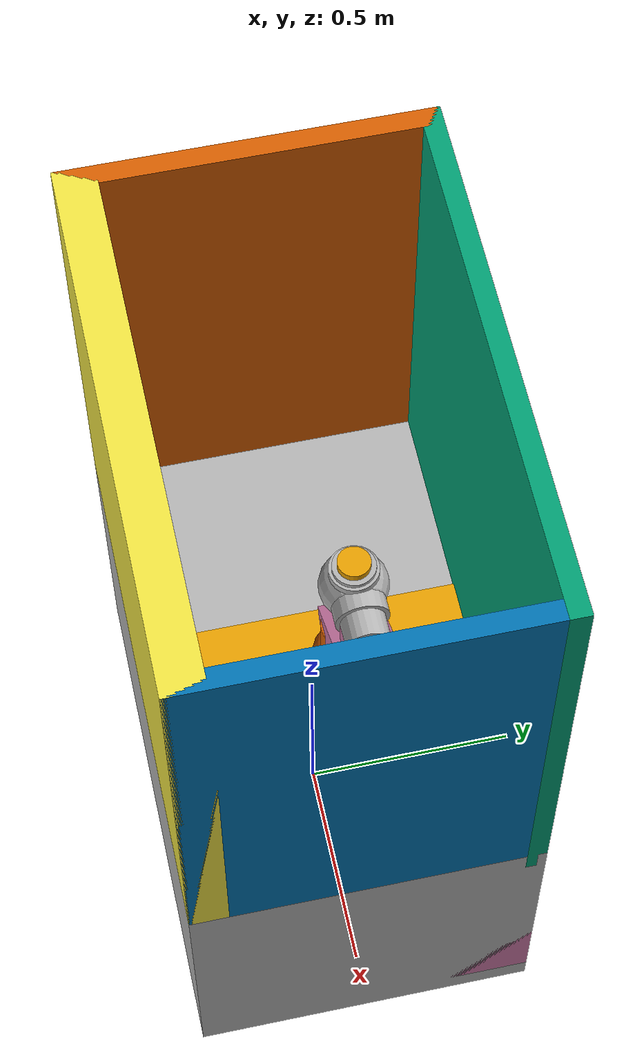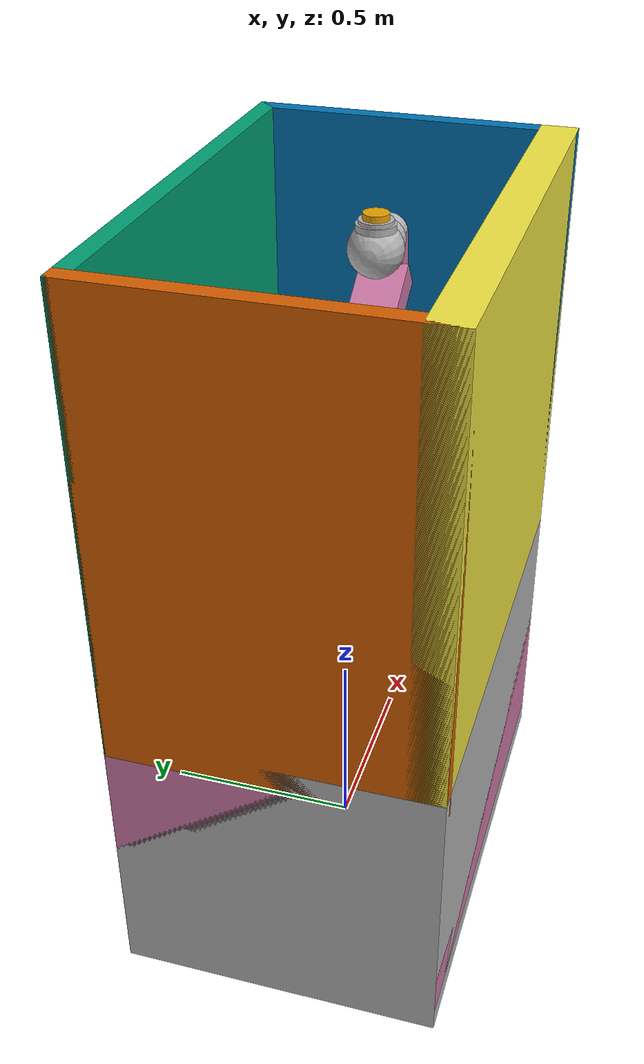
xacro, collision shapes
<?xml version="1.0"?>
<robot xmlns:xacro="http://www.ros.org/wiki/xacro" name="prbt_cell">
    <xacro:arg name="robot_prefix" default="prbt_"/>
    <xacro:arg name="bus_config" default="$(find prbt_robot_support)/config/prbt/bus.yml"/>
    <xacro:arg name="master_config" default="$(find prbt_robot_support)/config/prbt/master.dcf"/>
    <xacro:arg name="can_interface_name" default="vcan0"/>
    <xacro:arg name="master_bin" default=""/>
    <xacro:arg name="use_nominal_extrinsics" default="false"/>
    <xacro:arg name="add_plug" default="false" />
    <xacro:arg name="use_mesh" default="true" />
    <xacro:arg name="sim" default="false" />
    <xacro:arg name="simulation_controllers" default="" />

    <xacro:include filename="$(find prbt_cell_description)/urdf/robot_cell.xacro"/>
    <xacro:include filename="$(find prbt_cell_description)/urdf/gz_sim.ros2_control.xacro"/>
    <xacro:include filename="$(find prbt_robot_support)/urdf/prbt_macro.xacro" />
    <xacro:include filename="$(find prbt_robot_support)/urdf/prbt.ros2_control.xacro" />

    <!-- Add world link -->
    <link name="world" />

    <xacro:robot_cell name="robot_cell" prefix="" parent="world">
        <origin xyz="0 0 0" rpy="0 0 0" />
    </xacro:robot_cell>

    <!-- Add robot -->
    <xacro:prbt prefix="$(arg robot_prefix)" parent="robot_link">
        <origin xyz="0 0 0" rpy="0 0 -${pi/2}" />
    </xacro:prbt>

    <!-- Add ros2_control -->
    <!-- Add ros2_control -->
    <xacro:if value="$(arg sim)">
        <xacro:sim_ros2_control
            name="$(arg robot_prefix)"
            tf_prefix="$(arg robot_prefix)"
            initial_positions="${dict(prbt_joint_1=0.0, prbt_joint_2=1.57, prbt_joint_3=0.0, prbt_joint_4=1.57, prbt_joint_5=0.0, prbt_joint_6=0.0)}" />
        <gazebo reference="world">
        </gazebo>
        <gazebo>
            <plugin filename="gz_ros2_control-system" name="gz_ros2_control::GazeboSimROS2ControlPlugin">
                <parameters>$(arg simulation_controllers)</parameters>
            </plugin>
        </gazebo>
    </xacro:if>
    <xacro:unless value="$(arg sim)">
        <!-- Use real hardware ros2_control when sim is false -->
        <xacro:prbt_ros2_control
            name="$(arg robot_prefix)"
            prefix="$(arg robot_prefix)"
            bus_config="$(arg bus_config)"
            master_config="$(arg master_config)"
            can_interface_name="$(arg can_interface_name)"
            master_bin="$(arg master_bin)" />
    </xacro:unless>

</robot>

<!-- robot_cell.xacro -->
<robot xmlns:xacro="http://www.ros.org/wiki/xacro" name="robot_cell">
    <xacro:include filename="inertial_macros.xacro"/>
    <xacro:macro name="robot_cell" params="
        name
        prefix
        parent
        *origin">
        <xacro:property name="robot_center_offset_length" value="0.315" />
        <xacro:property name="robot_center_offset_width" value="0.02" />
        <xacro:property name="robot_base_height" value="0.62" />
        <xacro:property name="robotcell_length" value="1.20" />
        <xacro:property name="robotcell_width" value="0.80" />
        <xacro:property name="robotcell_height" value="1.16" />
        <xacro:property name="shield_thickness" value="0.045" />

        <material name="gray">
            <color rgba="0.6 0.8 0.8 1" />
        </material>

        <link name="${prefix}visuals_link">
            <visual>
                <geometry>
                    <mesh filename="file://$(find prbt_cell_description)/meshes/prbt_cell_v1.0.STL" scale="0.001 0.001 0.001" />
                </geometry>
                <material name="gray"/>
            </visual>
        </link>
        <link name="${prefix}shield_front_link">
            <collision>
                <origin rpy="0 0 0" xyz="0 0 0" />
                <geometry>
                    <box size="${robotcell_length} ${shield_thickness} ${robotcell_height}" />
                </geometry>
                <material name="gray"/>
            </collision>
            <xacro:inertial_box mass="5" x="${robotcell_length}" y="${shield_thickness}" z="${robotcell_height}">
                <origin rpy="0 0 0" xyz="0 0 0" />
            </xacro:inertial_box>
        </link>

        <link name="${prefix}shield_rear_link">
            <collision>
                <origin rpy="0 0 0 " xyz="0 0 0" />
                <geometry>
                    <box size="${robotcell_length} ${shield_thickness*2} ${robotcell_height}" />
                </geometry>
                <material name="gray"/>
            </collision>
            <xacro:inertial_box mass="5" x="${robotcell_length}" y="${shield_thickness*2}" z="${robotcell_height}">
                <origin rpy="0 0 0" xyz="0 0 0" />
            </xacro:inertial_box>
        </link>

        <link name="${prefix}shield_right_link">
            <collision>
                <origin rpy="0 0 0" xyz="0 0 0" />
                <geometry>
                    <box size="${shield_thickness} ${robotcell_width} ${robotcell_height}" />
                </geometry>
                <material name="gray"/>
            </collision>
            <xacro:inertial_box mass="5" x="${shield_thickness}" y="${robotcell_width}" z="${robotcell_height}">
                <origin rpy="0 0 0" xyz="0 0 0" />
            </xacro:inertial_box>
        </link>

        <link name="${prefix}shield_left_link">
            <collision>
                <origin rpy="0 0 0" xyz="0 0 0" />
                <geometry>
                    <box size="${shield_thickness} ${robotcell_width} ${robotcell_height}" />
                </geometry>
                <material name="gray"/>
            </collision>
            <xacro:inertial_box mass="5" x="${shield_thickness}" y="${robotcell_width}" z="${robotcell_height}">
                <origin rpy="0 0 0" xyz="0 0 0" />
            </xacro:inertial_box>
        </link>

        <link name="${prefix}robotcell_base_link">
            <collision>
                <origin rpy="0 0 0" xyz="0 0 ${robot_base_height/2}" />
                <geometry>
                    <box size="${robotcell_length} ${robotcell_width} ${robot_base_height}" />
                </geometry>
                <material name="gray"/>
            </collision>
            <xacro:inertial_box mass="70" x="${robotcell_length}" y="${robotcell_width}" z="${robot_base_height}">
                <origin rpy="0 0 0" xyz="0 0 0" />
            </xacro:inertial_box>
        </link>
        <link name="${prefix}robotcell_collision_base_link">
            <collision>
                <origin rpy="0 0 0" xyz="0 0 ${robot_base_height/2}" />
                <geometry>
                    <box size="${robotcell_length} ${robotcell_width} ${robot_base_height+0.12}" />
                </geometry>
                <material name="gray"/>
            </collision>
            <xacro:inertial_box mass="70" x="${robotcell_length}" y="${robotcell_width}" z="${robot_base_height+0.12}">
                <origin rpy="0 0 0" xyz="0 0 0" />
            </xacro:inertial_box>
        </link>

        <link name="${prefix}robotcell_collision_object_link">
            <collision>
                <origin rpy="0 0 0" xyz="0 0 0" />
                <geometry>
                    <box size="0.1 0.6 0.15" />
                </geometry>
                <material name="gray"/>
            </collision>
            <xacro:inertial_box mass="70" x="${robotcell_length}" y="${robotcell_width}" z="${robot_base_height+0.12}">
                <origin rpy="0 0 0" xyz="0 0 0" />
            </xacro:inertial_box>
        </link>

        <link name="${prefix}robot_link" />

        <joint name="${prefix}robotcell_base_to_visual" type="fixed">
            <parent link="${prefix}robotcell_base_link" />
            <child link="${prefix}visuals_link" />
            <origin xyz="${robotcell_length/2} -${robotcell_width/2} 0" rpy="0 0 ${pi/2}" />
        </joint>
        <joint name="${prefix}robotcell_base_to_front_joint" type="fixed">
            <parent link="${prefix}robotcell_base_link" />
            <child link="${prefix}shield_front_link" />
            <origin xyz="0 ${robotcell_width/2-shield_thickness/2} ${robot_base_height+robotcell_height/2}" rpy="0 0 0" />
        </joint>

        <joint name="${prefix}robotcell_base_to_rear" type="fixed">
            <parent link="${prefix}robotcell_base_link" />
            <child link="${prefix}shield_rear_link" />
            <origin xyz="0 ${-robotcell_width/2+shield_thickness} ${robot_base_height+robotcell_height/2}" rpy="0 0 0" />
        </joint>

        <joint name="${prefix}robotcell_base_to_left" type="fixed">
            <parent link="${prefix}robotcell_base_link" />
            <child link="${prefix}shield_left_link" />
            <origin xyz="${-robotcell_length/2+shield_thickness/2} 0 ${robot_base_height+robotcell_height/2}" rpy="0 0 0" />
        </joint>

        <joint name="${prefix}robotcell_base_to_right" type="fixed">
            <parent link="${prefix}robotcell_base_link" />
            <child link="${prefix}shield_right_link" />
            <origin xyz="${robotcell_length/2-shield_thickness/2} 0 ${robot_base_height+robotcell_height/2}" rpy="0 0 0" />
        </joint>
        <joint name="${prefix}robot_cell_base_joint" type="fixed">
            <parent link="${parent}" />
            <child link="${prefix}robotcell_base_link" />
            <xacro:insert_block name="origin" />
        </joint>
        <joint name="${prefix}robot_cell_collision_base_joint" type="fixed">
            <parent link="${parent}" />
            <child link="${prefix}robotcell_collision_base_link" />
            <xacro:insert_block name="origin" />
        </joint>
        <joint name="${prefix}robot_cell_base_to_robot_link" type="fixed">
            <parent link="${prefix}robotcell_base_link" />
            <child link="${prefix}robot_link" />
            <origin xyz="${robot_center_offset_length} ${robot_center_offset_width} ${robot_base_height}" rpy="0 0 0" />
        </joint>

        <joint name="${prefix}robot_cell_collision_object_link" type="fixed">
            <parent link="${prefix}robot_link" />
            <child link="${prefix}robotcell_collision_object_link" />
            <origin xyz="-0.25 0 0.2" rpy="0 0 0" />
        </joint>
    </xacro:macro>
</robot>

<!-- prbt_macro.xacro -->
<robot xmlns:xacro="http://www.ros.org/wiki/xacro">
  <xacro:macro name="prbt" params="prefix parent *origin">

    <!-- Height of Foot -->
    <xacro:property name="L0" value="0.2604" />

    <!-- Length of the first connector -->
    <xacro:property name="L1" value="0.3500" />

    <!-- Length of the second connector -->
    <xacro:property name="L2" value="0.3070" />

    <!-- Distance last joint to flange -->
    <xacro:property name="L3" value="0.0840" />

    <joint name="${prefix}base_link_${parent}_joint" type="fixed">
      <xacro:insert_block name="origin" />
      <parent link="${parent}"/>
      <child link="${prefix}base_link"/>
    </joint>

    <!-- robot foot link -->
    <link name="${prefix}base_link">
      <inertial>
        <mass value="2.4"/>
        <inertia ixx="0" ixy="0" ixz="0" iyy="0" iyz="0" izz="0" />
      </inertial>
      <visual>
        <origin xyz="0 0 0" rpy="0 0 0" />
        <geometry>
          <mesh filename="file://$(find prbt_robot_support)/meshes/foot.dae" />
        </geometry>
      </visual>

      <collision>
        <origin rpy="${pi} 0 0" xyz="0 0 0.065"/>
        <geometry>
          <cylinder length="0.13" radius="0.09275"/>
        </geometry>
      </collision>
    </link>

    <!-- arm 1 joint -->
    <joint name="${prefix}joint_1" type="revolute">
      <origin xyz="0 0 ${L0}" rpy="0 0 -${pi}"/>
      <parent link="${prefix}base_link"/>
      <child link="${prefix}link_1"/>
      <axis xyz="0 0 1"/>
      <limit effort="370" velocity="1.57" lower="-2.96706" upper="2.96706"/>
      <dynamics damping="15.0" friction="11" />
    </joint>

    <!-- arm 1 link -->
    <link name="${prefix}link_1">
      <inertial>
        <mass value="7.1"/>
        <origin xyz="0 -0.026 -0.051" />
        <inertia ixx="3.53e-2" ixy="0" ixz="0" iyy="3.01e-2" iyz="9.04e-3" izz="1.87e-2" />
      </inertial>

      <visual>
        <origin xyz="0 0 0" rpy="0 0 0" />
        <geometry>
          <mesh filename="file://$(find prbt_robot_support)/meshes/link_1.dae" />
        </geometry>
      </visual>

      <collision>
        <origin rpy="0 0 0" xyz="0 0 -0.08"/>
        <geometry>
          <cylinder length="0.10" radius="0.07"/>
        </geometry>
      </collision>
      <collision>
        <origin rpy="0 0 0" xyz="0 0 0"/>
        <geometry>
          <sphere radius="0.09"/>
        </geometry>
      </collision>
      <collision>
        <origin rpy="0 ${pi/2} ${pi/2}" xyz="0 -0.10 0"/>
        <geometry>
          <cylinder length="0.10" radius="0.065"/>
        </geometry>
      </collision>
    </link>

    <!-- joint between arm_1_link and arm_2_link -->
    <joint name="${prefix}joint_2" type="revolute">
      <origin xyz="0 0 0" rpy="${pi/2} 0 0"/>
      <parent link="${prefix}link_1"/>
      <child link="${prefix}link_2"/>
      <axis xyz="0 0 1"/>
      <limit effort="370" velocity="1.57" lower="-2.53073" upper="2.53073"/>
      <dynamics damping="12.0" friction="10.0" />
    </joint>

    <link name="${prefix}link_2">
      <inertial>
        <mass value="1.7"/>
        <origin xyz="0 0.162 0.134" />
        <inertia ixx="3.58e-2" ixy="0" ixz="0" iyy="3.22e-3" iyz="-1.45e-3" izz="3.66e-2" />
      </inertial>

      <visual name="first">
        <origin xyz="0 0 0" rpy="0 0 0" />
        <geometry>
          <mesh filename="file://$(find prbt_robot_support)/meshes/link_2.dae" />
        </geometry>
      </visual>

      <collision>
        <origin rpy="${pi/18} 0 0" xyz="0 0.15 0.145"/>
        <geometry>
          <box size="0.121 0.27 0.065"/>
        </geometry>
      </collision>
      <collision>
        <origin rpy="-${pi/7} 0 0" xyz="0 0.3 0.145"/>
        <geometry>
          <box size="0.11 0.1 0.075"/>
        </geometry>
      </collision>

    </link>

    <!-- joint between arm_2_link and arm_3_link -->
    <joint name="${prefix}joint_3" type="revolute">
      <origin xyz="0 ${L1} 0" rpy="0 ${pi} 0"/>
      <parent link="${prefix}link_2"/>
      <child link="${prefix}link_3"/>
      <axis xyz="0 0 1"/>
      <limit effort="176" velocity="1.57" lower="-2.35620" upper="2.35620"/>
      <dynamics damping="4.5" friction="4.5" />
    </joint>

    <link name="${prefix}link_3">
      <inertial>
        <mass value="4.8"/>
        <origin xyz="0 0.043 -0.027" />
        <inertia ixx="2.06e-2" ixy="0" ixz="0" iyy="1.08e-2" iyz="-5.36e-3" izz="1.63e-2" />
      </inertial>

      <visual>
        <origin xyz="0 0 0" rpy="0 0 0" />
        <geometry>
          <mesh filename="file://$(find prbt_robot_support)/meshes/link_3.dae" />
        </geometry>
      </visual>

      <collision>
        <origin rpy="0 0 0" xyz="0 0 -0.11"/>
        <geometry>
          <cylinder length="0.10" radius="0.06"/>
        </geometry>
      </collision>
      <collision>
        <origin rpy="0 0 0" xyz="0 0 0"/>
        <geometry>
          <sphere radius="0.085"/>
        </geometry>
      </collision>
      <collision>
        <origin rpy="0 ${pi/2} ${pi/2}" xyz="0 0.10 0"/>
        <geometry>
          <cylinder length="0.10" radius="0.065"/>
        </geometry>
      </collision>
    </link>

    <!-- joint between arm_3_link and arm_4_link -->
    <joint name="${prefix}joint_4" type="revolute">
      <origin xyz="0 0 0" rpy="-${pi/2} ${pi} 0" />
      <parent link="${prefix}link_3"/>
      <child link="${prefix}link_4"/>
      <axis xyz="0 0 1" />
      <limit effort="176" velocity="1.57" lower="-2.96706" upper="2.96706"/>
      <dynamics damping="4.2" friction="3.8" />
    </joint>

    <link name="${prefix}link_4">
      <inertial>
        <mass value="0.9"/>
        <origin xyz="0 -0.061 0.204" />
        <inertia ixx="6.79e-3" ixy="0" ixz="0" iyy="4.91e-3" iyz="2.67e-3" izz="3.40e-3" />
      </inertial>

      <visual>
        <origin xyz="0 0 0" rpy="0 0 0" />
        <geometry>
          <mesh filename="file://$(find prbt_robot_support)/meshes/link_4.dae" />
        </geometry>
      </visual>

      <collision>
        <origin rpy="${pi/3.25} 0 0" xyz="0 -0.04 0.162"/>
        <geometry>
          <box size="0.121 0.08 0.17"/>
        </geometry>
      </collision>
      <collision>
        <origin rpy="-${pi/30} 0 0" xyz="0 -0.115 0.25"/>
        <geometry>
          <box size="0.09 0.06 0.12"/>
        </geometry>
      </collision>

    </link>

    <!-- joint between arm_4_link and arm_5_link -->
    <joint name="${prefix}joint_5" type="revolute">
      <origin xyz="0 0 ${L2}" rpy="${pi/2} 0 ${pi}" />
      <parent link="${prefix}link_4"/>
      <child link="${prefix}link_5"/>
      <axis xyz="0 0 1" />
      <limit effort="41.6" velocity="1.57" lower="-2.96706" upper="2.96706" />
      <dynamics damping="1.5" friction="3.5" />
    </joint>

    <link name="${prefix}link_5">
      <inertial>
        <mass value="2.6"/>
        <origin xyz="-0.001 0.021 -0.032" />
        <inertia ixx="7.37e-3" ixy="4.78e-6" ixz="6.00e-5" iyy="5.87e-3" iyz="-1.71e-3" izz="3.96e-3" />
      </inertial>

      <visual>
        <origin xyz="0 0 0" rpy="0 0 0" />
        <geometry>
          <mesh filename="file://$(find prbt_robot_support)/meshes/link_5.dae"/>
        </geometry>
      </visual>

      <collision>
        <origin rpy="0 0 0" xyz="0 0 -0.095"/>
        <geometry>
          <cylinder length="0.08" radius="0.045"/>
        </geometry>
      </collision>
      <collision>
        <origin rpy="0 0 0" xyz="0 0 -0.06"/>
        <geometry>
          <cylinder length="0.04" radius="0.0545"/>
        </geometry>
      </collision>
      <collision>
        <origin rpy="0 0 0" xyz="0 0 0"/>
        <geometry>
          <sphere radius="0.07"/>
        </geometry>
      </collision>
      <collision>
        <origin rpy="0 ${pi/2} ${pi/2}" xyz="0 0.05 0"/>
        <geometry>
          <cylinder length="0.03" radius="0.05"/>
        </geometry>
      </collision>
      <collision>
        <origin rpy="0 ${pi/2} ${pi/2}" xyz="0 0.05 0"/>
        <geometry>
          <cylinder length="0.049" radius="0.0435"/>
        </geometry>
      </collision>
    </link>

    <!-- joint between arm_5_link and flange -->
    <joint name="${prefix}joint_6" type="revolute">
      <origin xyz="0 ${L3} 0" rpy="-${pi/2} 0 0" />
      <parent link="${prefix}link_5"/>
      <child link="${prefix}flange"/>
      <axis xyz="0 0 1" />
      <limit effort="20.1" velocity="1.57" lower="-3.12414" upper="3.12414" />
      <dynamics damping="4.5" friction="7.0" />
    </joint>

    <!-- Flange -->
    <link name="${prefix}flange">
      <inertial>
        <mass value="0.02" />
        <origin xyz="0 0 0" />
        <inertia ixx="0.001" ixy="0" ixz="0" iyy="0.001" iyz="0" izz="0.001" />
      </inertial>

      <visual>
        <origin xyz="0 0 0" rpy="0 0 0" />
        <geometry>
          <mesh filename="file://$(find prbt_robot_support)/meshes/flange.dae"/>
        </geometry>
      </visual>

      <collision>
        <origin rpy="0 0 0" xyz="0 0 -0.0035"/>
        <geometry>
          <cylinder length="0.02" radius="0.0331"/>
        </geometry>
      </collision>
    </link>

    <!-- ROS-Industrial 'base' frame base_link to robot world coordinate sytem transform -->
    <link name="${prefix}base" />
    <joint name="${prefix}base_link-base" type="fixed">
      <origin xyz="0 0 0" rpy="0 0 0"/>
      <parent link="${prefix}base_link"/>
      <child link="${prefix}base"/>
    </joint>

    <!-- ROS-Industrial 'tool0' frame all-zeros tool frame -->
    <link name="${prefix}tool0" />
    <joint name="${prefix}flange-tool0" type="fixed">
      <origin xyz="0 0 0" rpy="0 0 0" />
      <parent link="${prefix}flange" />
      <child link="${prefix}tool0" />
    </joint>

    <!-- transmissions for gazebo -->
    <transmission name="${prefix}joint_1_trans">
      <type>transmission_interface/SimpleTransmission</type>
      <joint name="${prefix}joint_1">
        <hardwareInterface>hardware_interface/PositionJointInterface</hardwareInterface>
      </joint>
      <actuator name="${prefix}joint_1_motor"/>
    </transmission>
    <transmission name="${prefix}joint_2_trans">
      <type>transmission_interface/SimpleTransmission</type>
      <joint name="${prefix}joint_2">
        <hardwareInterface>hardware_interface/PositionJointInterface</hardwareInterface>
      </joint>
      <actuator name="${prefix}joint_2_motor"/>
    </transmission>
    <transmission name="${prefix}joint_3_trans">
      <type>transmission_interface/SimpleTransmission</type>
      <joint name="${prefix}joint_3">
        <hardwareInterface>hardware_interface/PositionJointInterface</hardwareInterface>
      </joint>
      <actuator name="${prefix}joint_3_motor"/>
    </transmission>
    <transmission name="${prefix}joint_4_trans">
      <type>transmission_interface/SimpleTransmission</type>
      <joint name="${prefix}joint_4">
        <hardwareInterface>hardware_interface/PositionJointInterface</hardwareInterface>
      </joint>
      <actuator name="${prefix}joint_4_motor"/>
    </transmission>
    <transmission name="${prefix}joint_5_trans">
      <type>transmission_interface/SimpleTransmission</type>
      <joint name="${prefix}joint_5">
        <hardwareInterface>hardware_interface/PositionJointInterface</hardwareInterface>
      </joint>
      <actuator name="${prefix}joint_5_motor"/>
    </transmission>
    <transmission name="${prefix}joint_6_trans">
      <type>transmission_interface/SimpleTransmission</type>
      <joint name="${prefix}joint_6">
        <hardwareInterface>hardware_interface/PositionJointInterface</hardwareInterface>
      </joint>
      <actuator name="${prefix}joint_6_motor"/>
    </transmission>
  </xacro:macro>

</robot>
